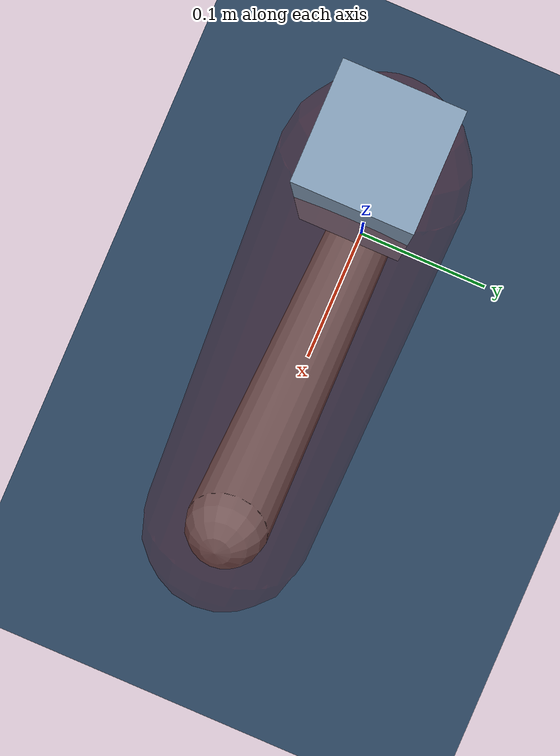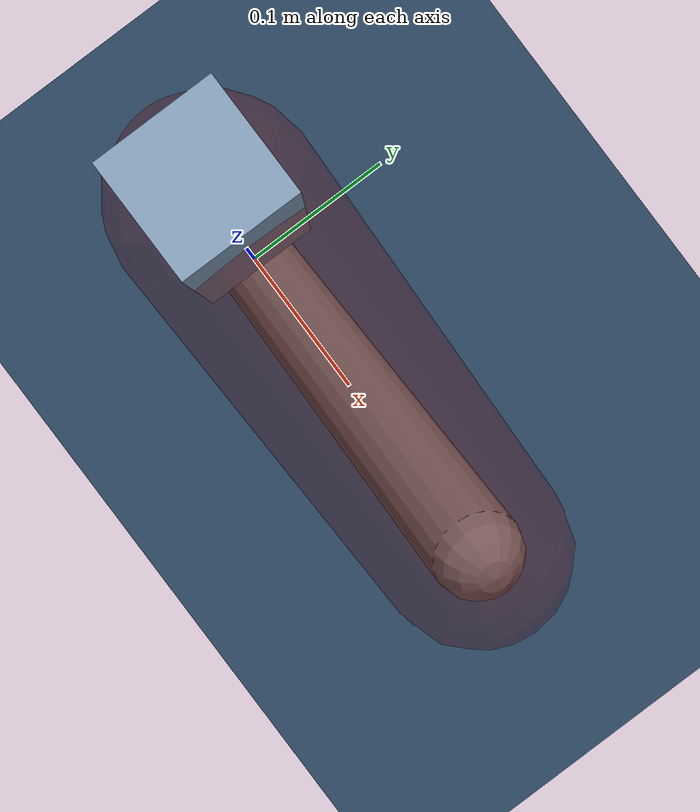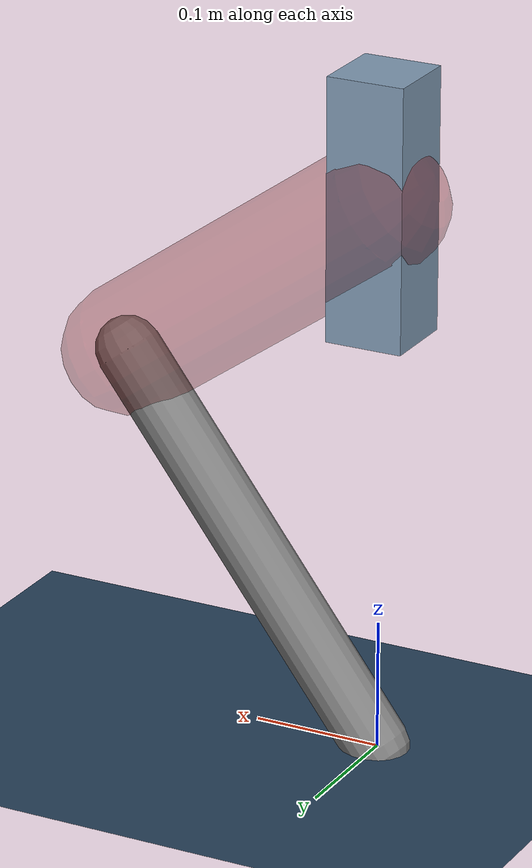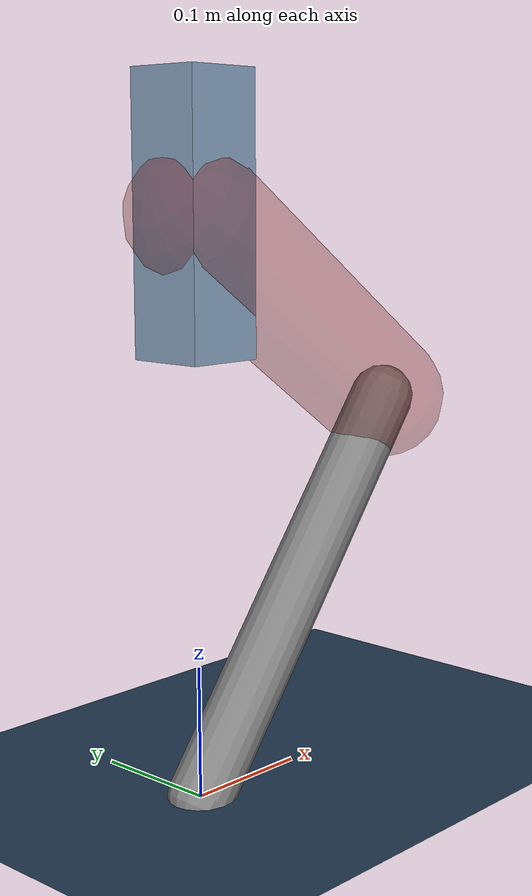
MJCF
<mujoco model="Hopper2D">
	<compiler inertiafromgeom="true" angle="radian" />
	<option timestep="0.001" integrator="implicit" cone="elliptic" solver="Newton" tolerance="1e-10" />

	<default>
		<geom contype="1" conaffinity="1" condim="3" friction="2 0.005 0.0001" solref="0.005 1" />
		<joint limited="true" damping="0.1" />
	</default>

	<asset>
		<texture name="skybox" type="skybox" builtin="gradient" rgb1=".4 .6 .8" rgb2="0 0 0" width="800" height="800" />
		<texture name="grid" type="2d" builtin="checker" rgb1=".1 .2 .3" rgb2=".2 .3 .4" width="300" height="300" mark="edge" markrgb=".2 .3 .4" />
		<material name="ground" texture="grid" texrepeat="1 1" texuniform="true" reflectance="0.1" />
		<material name="leg" rgba="0.5 0.6 0.7 1" />
	</asset>

	<worldbody>

		<geom name="floor" type="plane" size="5 5 0.25" material="ground" />

		<light directional="false" diffuse="0.8 0.8 0.8" specular="0.3 0.3 0.3" pos="0 0 2" dir="0 0 -1" />
		<light mode="targetbodycom" target="base" directional="false" diffuse="0.8 0.8 0.8" specular="0.3 0.3 0.3" pos="0 0 2" dir="0 0 -1" />

		<camera name="fixed" pos="0 -2 1" xyaxes="1 0 0 0 0 1" />
		<camera name="tracking" mode="trackcom" pos="0 -3 1" />

		<body name="root" pos="0 0 0.4268737574555234">
			<joint name="slide_x" type="slide" axis="1 0 0" range="-100 100" />
			<joint name="slide_z" type="slide" axis="0 0 1" range="0 10" />

			<body name="base" pos="0 0 0">
				<geom name="torso" type="box" size="0.03 0.03 0.1" mass="2.765" material="leg" />

				<body name="link1" pos="0 0 0" euler="0 0.6141680619478602 0">
					<joint type="hinge" axis="0 -1 0" pos="0 0 0" name="hinge1" limited="true" range="-3.14 3.14" stiffness="0" damping="0.1" />
					<geom name="thigh" type="capsule" fromto="0 0 0 0.2559741059240788 0 0" size="0.05" rgba="0.5 0 0 0.3" mass="0.8719326754026049" />

					<body name="link2" pos="0.2559741059240788 0 0" euler="0 1.5993836446779537 0">
						<joint type="hinge" axis="0 -1 0" pos="0 0 0" name="hinge2" limited="true" range="-3.14 3.14" stiffness="0" damping="0.1" />
						<geom name="shank" type="capsule" fromto="0 0 0 0.3490065267407783 0 0" size="0.025" mass="0.5231052213926227" />

					</body>
				</body>
			</body>
		</body>
	</worldbody>

	<actuator>
		<motor name="torque1" joint="hinge1" ctrlrange="-87.44368961187809 87.44368961187809" ctrllimited="true" gear="1" />
		<motor name="torque2" joint="hinge2" ctrlrange="-47.89315275683065 47.89315275683065" ctrllimited="true" gear="1" />
	</actuator>
</mujoco>
